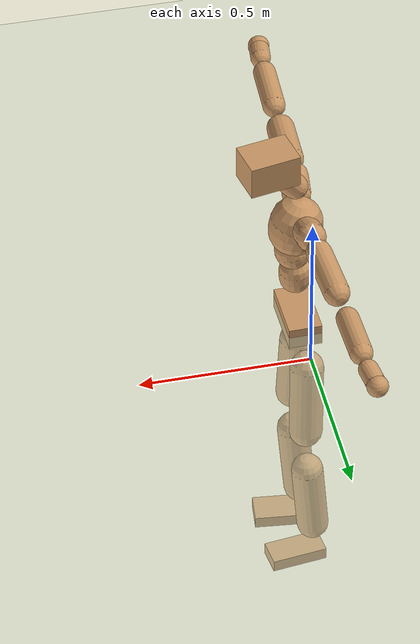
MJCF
<mujoco model="humanoid">
  <compiler coordinate="local" angle="radian"/>
  <default>
    <joint damping="0.0" armature="0.01" stiffness="0.0" limited="true"/>
    <geom conaffinity="1" condim="3" contype="7" margin="0.001" rgba="0.8 0.6 .4 1"/>
  </default>
  <asset>
    <texture type="skybox" builtin="gradient" rgb1=".4 .5 .6" rgb2="0 0 0" width="100" height="100"/>
    <texture builtin="flat" height="1278" mark="cross" markrgb="1 1 1" name="texgeom" random="0.01" rgb1="0.8 0.6 0.4" rgb2="0.8 0.6 0.4" type="cube" width="127"/>
    <texture builtin="checker" height="100" name="texplane" rgb1="0 0 0" rgb2="0.8 0.8 0.8" type="2d" width="100"/>
    <material name="MatPlane" reflectance="0.5" shininess="1" specular="1" texrepeat="60 60" texture="texplane"/>
    <material name="geom" texture="texgeom" texuniform="true"/>
  </asset>
  <worldbody>
    <light cutoff="100" diffuse="1 1 1" dir="-0 0 -1.3" directional="true" exponent="1" pos="0 0 1.3" specular=".1 .1 .1"/>
    <geom conaffinity="1" condim="3" name="floor" pos="0 0 0" rgba="0.8 0.9 0.8 1" size="100 100 .2" type="plane" material="MatPlane"/>
    <body name="Pelvis" pos="-0.0001 -0.1947 0.0031">
      <freejoint name="Pelvis"/>
      <geom type="box" contype="1" conaffinity="1" density="500" pos="-0.0074 -0.0001 -0.0113" size="0.0491 0.0921 0.0332" quat="1.0000 0.0000 0.0000 0.0088" name="Pelvis"/>
      <body name="L_Hip" pos="-0.0237 0.055 -0.0807">
        <joint name="L_Hip_x" type="hinge" pos="0 0 0" axis="1 0 0" stiffness="800" damping="80" armature="0.02" range="-180.0000 180.0000"/>
        <joint name="L_Hip_y" type="hinge" pos="0 0 0" axis="0 1 0" stiffness="800" damping="80" armature="0.02" range="-180.0000 180.0000"/>
        <joint name="L_Hip_z" type="hinge" pos="0 0 0" axis="0 0 1" stiffness="800" damping="80" armature="0.02" range="-180.0000 180.0000"/>
        <geom type="capsule" contype="1" conaffinity="1" density="500" fromto="0.0023 0.0083 -0.0766 0.0091 0.0332 -0.3066" size="0.0496" name="L_Hip"/>
        <body name="L_Knee" pos="0.0113 0.0415 -0.3832">
          <joint name="L_Knee_x" type="hinge" pos="0 0 0" axis="1 0 0" stiffness="800" damping="80" armature="0.02" range="-180.0000 180.0000"/>
          <joint name="L_Knee_y" type="hinge" pos="0 0 0" axis="0 1 0" stiffness="800" damping="80" armature="0.02" range="-180.0000 180.0000"/>
          <joint name="L_Knee_z" type="hinge" pos="0 0 0" axis="0 0 1" stiffness="800" damping="80" armature="0.02" range="-180.0000 180.0000"/>
          <geom type="capsule" contype="1" conaffinity="1" density="500" fromto="-0.0071 -0.0028 -0.0796 -0.0283 -0.0111 -0.3185" size="0.0475" name="L_Knee"/>
          <body name="L_Ankle" pos="-0.0353 -0.0139 -0.3982">
            <joint name="L_Ankle_x" type="hinge" pos="0 0 0" axis="1 0 0" stiffness="800" damping="80" armature="0.02" range="-180.0000 180.0000"/>
            <joint name="L_Ankle_y" type="hinge" pos="0 0 0" axis="0 1 0" stiffness="800" damping="80" armature="0.02" range="-180.0000 180.0000"/>
            <joint name="L_Ankle_z" type="hinge" pos="0 0 0" axis="0 0 1" stiffness="800" damping="80" armature="0.02" range="-180.0000 180.0000"/>
            <geom type="box" contype="1" conaffinity="1" density="500" pos="0.0598 0.0074 -0.0277" size="0.0843 0.0413 0.0195" quat="0.9981 0.0000 0.0000 0.0618" name="L_Ankle"/>
            <body name="L_Toe" pos="0.1196 0.0149 -0.0553">
              <joint name="L_Toe_x" type="hinge" pos="0 0 0" axis="1 0 0" stiffness="500" damping="50" armature="0.02" range="-180.0000 180.0000"/>
              <joint name="L_Toe_y" type="hinge" pos="0 0 0" axis="0 1 0" stiffness="500" damping="50" armature="0.02" range="-180.0000 180.0000"/>
              <joint name="L_Toe_z" type="hinge" pos="0 0 0" axis="0 0 1" stiffness="500" damping="50" armature="0.02" range="-180.0000 180.0000"/>
              <geom type="box" contype="1" conaffinity="1" density="500" pos="0.0000 0.0000 0.0293" size="0.0008 0.0021 0.0011" quat="0.9976 0.0000 0.0000 0.0689" name="L_Toe"/>
            </body>
          </body>
        </body>
      </body>
      <body name="R_Hip" pos="-0.0195 -0.0526 -0.0773">
        <joint name="R_Hip_x" type="hinge" pos="0 0 0" axis="1 0 0" stiffness="800" damping="80" armature="0.02" range="-180.0000 180.0000"/>
        <joint name="R_Hip_y" type="hinge" pos="0 0 0" axis="0 1 0" stiffness="800" damping="80" armature="0.02" range="-180.0000 180.0000"/>
        <joint name="R_Hip_z" type="hinge" pos="0 0 0" axis="0 0 1" stiffness="800" damping="80" armature="0.02" range="-180.0000 180.0000"/>
        <geom type="capsule" contype="1" conaffinity="1" density="500" fromto="0.0014 -0.0089 -0.0785 0.0056 -0.0356 -0.3138" size="0.049" name="R_Hip"/>
        <body name="R_Knee" pos="0.007 -0.0445 -0.3923">
          <joint name="R_Knee_x" type="hinge" pos="0 0 0" axis="1 0 0" stiffness="800" damping="80" armature="0.02" range="-180.0000 180.0000"/>
          <joint name="R_Knee_y" type="hinge" pos="0 0 0" axis="0 1 0" stiffness="800" damping="80" armature="0.02" range="-180.0000 180.0000"/>
          <joint name="R_Knee_z" type="hinge" pos="0 0 0" axis="0 0 1" stiffness="800" damping="80" armature="0.02" range="-180.0000 180.0000"/>
          <geom type="capsule" contype="1" conaffinity="1" density="500" fromto="-0.0066 0.0036 -0.0794 -0.0266 0.0145 -0.3175" size="0.0482" name="R_Knee"/>
          <body name="R_Ankle" pos="-0.0332 0.0181 -0.3969">
            <joint name="R_Ankle_x" type="hinge" pos="0 0 0" axis="1 0 0" stiffness="800" damping="80" armature="0.02" range="-180.0000 180.0000"/>
            <joint name="R_Ankle_y" type="hinge" pos="0 0 0" axis="0 1 0" stiffness="800" damping="80" armature="0.02" range="-180.0000 180.0000"/>
            <joint name="R_Ankle_z" type="hinge" pos="0 0 0" axis="0 0 1" stiffness="800" damping="80" armature="0.02" range="-180.0000 180.0000"/>
            <geom type="box" contype="1" conaffinity="1" density="500" pos="0.0612 -0.0068 -0.0223" size="0.0854 0.0456 0.0189" quat="0.9985 0.0000 0.0000 -0.0554" name="R_Ankle"/>
            <body name="R_Toe" pos="0.1223 -0.0136 -0.0447">
              <joint name="R_Toe_x" type="hinge" pos="0 0 0" axis="1 0 0" stiffness="500" damping="50" armature="0.02" range="-180.0000 180.0000"/>
              <joint name="R_Toe_y" type="hinge" pos="0 0 0" axis="0 1 0" stiffness="500" damping="50" armature="0.02" range="-180.0000 180.0000"/>
              <joint name="R_Toe_z" type="hinge" pos="0 0 0" axis="0 0 1" stiffness="500" damping="50" armature="0.02" range="-180.0000 180.0000"/>
              <geom type="box" contype="1" conaffinity="1" density="500" pos="0.0000 0.0000 0.0253" size="0.0008 0.0022 0.0011" quat="0.9989 0.0000 0.0000 -0.0465" name="R_Toe"/>
            </body>
          </body>
        </body>
      </body>
      <body name="Torso" pos="-0.0014 -0.0033 0.0905">
        <joint name="Torso_x" type="hinge" pos="0 0 0" axis="1 0 0" stiffness="1000" damping="100" armature="0.02" range="-180.0000 180.0000"/>
        <joint name="Torso_y" type="hinge" pos="0 0 0" axis="0 1 0" stiffness="1000" damping="100" armature="0.02" range="-180.0000 180.0000"/>
        <joint name="Torso_z" type="hinge" pos="0 0 0" axis="0 0 1" stiffness="1000" damping="100" armature="0.02" range="-180.0000 180.0000"/>
        <geom type="capsule" contype="1" conaffinity="1" density="500" fromto="0.0034 0.0024 0.0798 0.0023 0.0016 0.0532" size="0.0478" name="Torso"/>
        <body name="Spine" pos="0.0056 0.0041 0.1331">
          <joint name="Spine_x" type="hinge" pos="0 0 0" axis="1 0 0" stiffness="1000" damping="100" armature="0.02" range="-180.0000 180.0000"/>
          <joint name="Spine_y" type="hinge" pos="0 0 0" axis="0 1 0" stiffness="1000" damping="100" armature="0.02" range="-180.0000 180.0000"/>
          <joint name="Spine_z" type="hinge" pos="0 0 0" axis="0 0 1" stiffness="1000" damping="100" armature="0.02" range="-180.0000 180.0000"/>
          <geom type="capsule" contype="1" conaffinity="1" density="500" fromto="0.0086 0.0013 0.0290 0.0058 0.0009 0.0194" size="0.0515" name="Spine"/>
          <body name="Chest" pos="0.0144 0.0022 0.0484">
            <joint name="Chest_x" type="hinge" pos="0 0 0" axis="1 0 0" stiffness="1000" damping="100" armature="0.02" range="-180.0000 180.0000"/>
            <joint name="Chest_y" type="hinge" pos="0 0 0" axis="0 1 0" stiffness="1000" damping="100" armature="0.02" range="-180.0000 180.0000"/>
            <joint name="Chest_z" type="hinge" pos="0 0 0" axis="0 0 1" stiffness="1000" damping="100" armature="0.02" range="-180.0000 180.0000"/>
            <geom type="capsule" contype="1" conaffinity="1" density="500" fromto="-0.0184 -0.0011 0.0814 -0.0123 -0.0007 0.0543" size="0.0764" name="Chest"/>
            <body name="Neck" pos="-0.0257 -0.0024 0.1988">
              <joint name="Neck_x" type="hinge" pos="0 0 0" axis="1 0 0" stiffness="500" damping="50" armature="0.02" range="-180.0000 180.0000"/>
              <joint name="Neck_y" type="hinge" pos="0 0 0" axis="0 1 0" stiffness="500" damping="50" armature="0.02" range="-180.0000 180.0000"/>
              <joint name="Neck_z" type="hinge" pos="0 0 0" axis="0 0 1" stiffness="500" damping="50" armature="0.02" range="-180.0000 180.0000"/>
              <geom type="capsule" contype="1" conaffinity="1" density="500" fromto="0.0124 0.0021 0.0152 0.0495 0.0085 0.0608" size="0.0366" name="Neck"/>
              <body name="Head" pos="0.0619 0.0107 0.076">
                <joint name="Head_x" type="hinge" pos="0 0 0" axis="1 0 0" stiffness="500" damping="50" armature="0.02" range="-180.0000 180.0000"/>
                <joint name="Head_y" type="hinge" pos="0 0 0" axis="0 1 0" stiffness="500" damping="50" armature="0.02" range="-180.0000 180.0000"/>
                <joint name="Head_z" type="hinge" pos="0 0 0" axis="0 0 1" stiffness="500" damping="50" armature="0.02" range="-180.0000 180.0000"/>
                <geom type="box" contype="1" conaffinity="1" density="500" pos="0.0320 0.0063 0.0390" size="0.074 0.0548 0.0495" quat="0.9952 0.0000 0.0000 0.0977" name="Head"/>
              </body>
            </body>
            <body name="L_Thorax" pos="-0.0304 0.0659 0.1061">
              <joint name="L_Thorax_x" type="hinge" pos="0 0 0" axis="1 0 0" stiffness="500" damping="50" armature="0.02" range="-180.0000 180.0000"/>
              <joint name="L_Thorax_y" type="hinge" pos="0 0 0" axis="0 1 0" stiffness="500" damping="50" armature="0.02" range="-180.0000 180.0000"/>
              <joint name="L_Thorax_z" type="hinge" pos="0 0 0" axis="0 0 1" stiffness="500" damping="50" armature="0.02" range="-180.0000 180.0000"/>
              <geom type="capsule" contype="1" conaffinity="1" density="500" fromto="0.0001 0.0165 0.0068 0.0004 0.0659 0.0272" size="0.0424" name="L_Thorax"/>
              <body name="L_Shoulder" pos="0.0005 0.0823 0.034">
                <joint name="L_Shoulder_x" type="hinge" pos="0 0 0" axis="1 0 0" stiffness="500" damping="50" armature="0.02" range="-720.0000 720.0000"/>
                <joint name="L_Shoulder_y" type="hinge" pos="0 0 0" axis="0 1 0" stiffness="500" damping="50" armature="0.02" range="-720.0000 720.0000"/>
                <joint name="L_Shoulder_z" type="hinge" pos="0 0 0" axis="0 0 1" stiffness="500" damping="50" armature="0.02" range="-720.0000 720.0000"/>
                <geom type="capsule" contype="1" conaffinity="1" density="500" fromto="-0.0044 0.0535 -0.0042 -0.0177 0.2141 -0.0169" size="0.0374" name="L_Shoulder"/>
                <body name="L_Elbow" pos="-0.0221 0.2676 -0.0211">
                  <joint name="L_Elbow_x" type="hinge" pos="0 0 0" axis="1 0 0" stiffness="500" damping="50" armature="0.02" range="-720.0000 720.0000"/>
                  <joint name="L_Elbow_y" type="hinge" pos="0 0 0" axis="0 1 0" stiffness="500" damping="50" armature="0.02" range="-720.0000 720.0000"/>
                  <joint name="L_Elbow_z" type="hinge" pos="0 0 0" axis="0 0 1" stiffness="500" damping="50" armature="0.02" range="-720.0000 720.0000"/>
                  <geom type="capsule" contype="1" conaffinity="1" density="500" fromto="-0.0007 0.0500 0.0019 -0.0028 0.2001 0.0076" size="0.0326" name="L_Elbow"/>
                  <body name="L_Wrist" pos="-0.0036 0.2502 0.0095">
                    <joint name="L_Wrist_x" type="hinge" pos="0 0 0" axis="1 0 0" stiffness="300" damping="30" armature="0.02" range="-180.0000 180.0000"/>
                    <joint name="L_Wrist_y" type="hinge" pos="0 0 0" axis="0 1 0" stiffness="300" damping="30" armature="0.02" range="-180.0000 180.0000"/>
                    <joint name="L_Wrist_z" type="hinge" pos="0 0 0" axis="0 0 1" stiffness="300" damping="30" armature="0.02" range="-180.0000 180.0000"/>
                    <geom type="capsule" contype="1" conaffinity="1" density="500" fromto="-0.0026 0.0154 -0.0019 -0.0105 0.0615 -0.0077" size="0.0282" name="L_Wrist"/>
                    <body name="L_Hand" pos="-0.0131 0.0769 -0.0097">
                      <joint name="L_Hand_x" type="hinge" pos="0 0 0" axis="1 0 0" stiffness="300" damping="30" armature="0.02" range="-180.0000 180.0000"/>
                      <joint name="L_Hand_y" type="hinge" pos="0 0 0" axis="0 1 0" stiffness="300" damping="30" armature="0.02" range="-180.0000 180.0000"/>
                      <joint name="L_Hand_z" type="hinge" pos="0 0 0" axis="0 0 1" stiffness="300" damping="30" armature="0.02" range="-180.0000 180.0000"/>
                      <geom type="sphere" contype="1" conaffinity="1" density="500" size="0.0307" pos="0.0000 0.0000 0.0000" name="L_Hand"/>
                    </body>
                  </body>
                </body>
              </body>
            </body>
            <body name="R_Thorax" pos="-0.0361 -0.0689 0.1022">
              <joint name="R_Thorax_x" type="hinge" pos="0 0 0" axis="1 0 0" stiffness="500" damping="50" armature="0.02" range="-180.0000 180.0000"/>
              <joint name="R_Thorax_y" type="hinge" pos="0 0 0" axis="0 1 0" stiffness="500" damping="50" armature="0.02" range="-180.0000 180.0000"/>
              <joint name="R_Thorax_z" type="hinge" pos="0 0 0" axis="0 0 1" stiffness="500" damping="50" armature="0.02" range="-180.0000 180.0000"/>
              <geom type="capsule" contype="1" conaffinity="1" density="500" fromto="-0.0014 -0.0176 0.0073 -0.0058 -0.0705 0.0292" size="0.0419" name="R_Thorax"/>
              <body name="R_Shoulder" pos="-0.0072 -0.0882 0.0365">
                <joint name="R_Shoulder_x" type="hinge" pos="0 0 0" axis="1 0 0" stiffness="500" damping="50" armature="0.02" range="-720.0000 720.0000"/>
                <joint name="R_Shoulder_y" type="hinge" pos="0 0 0" axis="0 1 0" stiffness="500" damping="50" armature="0.02" range="-720.0000 720.0000"/>
                <joint name="R_Shoulder_z" type="hinge" pos="0 0 0" axis="0 0 1" stiffness="500" damping="50" armature="0.02" range="-720.0000 720.0000"/>
                <geom type="capsule" contype="1" conaffinity="1" density="500" fromto="-0.0030 -0.0529 -0.0041 -0.0118 -0.2115 -0.0165" size="0.0405" name="R_Shoulder"/>
                <body name="R_Elbow" pos="-0.0148 -0.2644 -0.0206">
                  <joint name="R_Elbow_x" type="hinge" pos="0 0 0" axis="1 0 0" stiffness="500" damping="50" armature="0.02" range="-720.0000 720.0000"/>
                  <joint name="R_Elbow_y" type="hinge" pos="0 0 0" axis="0 1 0" stiffness="500" damping="50" armature="0.02" range="-720.0000 720.0000"/>
                  <joint name="R_Elbow_z" type="hinge" pos="0 0 0" axis="0 0 1" stiffness="500" damping="50" armature="0.02" range="-720.0000 720.0000"/>
                  <geom type="capsule" contype="1" conaffinity="1" density="500" fromto="-0.0021 -0.0525 0.0006 -0.0085 -0.2102 0.0023" size="0.0334" name="R_Elbow"/>
                  <body name="R_Wrist" pos="-0.0106 -0.2627 0.0029">
                    <joint name="R_Wrist_x" type="hinge" pos="0 0 0" axis="1 0 0" stiffness="300" damping="30" armature="0.02" range="-180.0000 180.0000"/>
                    <joint name="R_Wrist_y" type="hinge" pos="0 0 0" axis="0 1 0" stiffness="300" damping="30" armature="0.02" range="-180.0000 180.0000"/>
                    <joint name="R_Wrist_z" type="hinge" pos="0 0 0" axis="0 0 1" stiffness="300" damping="30" armature="0.02" range="-180.0000 180.0000"/>
                    <geom type="capsule" contype="1" conaffinity="1" density="500" fromto="-0.0020 -0.0162 -0.0015 -0.0082 -0.0646 -0.0060" size="0.0299" name="R_Wrist"/>
                    <body name="R_Hand" pos="-0.0102 -0.0808 -0.0075">
                      <joint name="R_Hand_x" type="hinge" pos="0 0 0" axis="1 0 0" stiffness="300" damping="30" armature="0.02" range="-180.0000 180.0000"/>
                      <joint name="R_Hand_y" type="hinge" pos="0 0 0" axis="0 1 0" stiffness="300" damping="30" armature="0.02" range="-180.0000 180.0000"/>
                      <joint name="R_Hand_z" type="hinge" pos="0 0 0" axis="0 0 1" stiffness="300" damping="30" armature="0.02" range="-180.0000 180.0000"/>
                      <geom type="sphere" contype="1" conaffinity="1" density="500" size="0.0321" pos="0.0000 0.0000 0.0000" name="R_Hand"/>
                    </body>
                  </body>
                </body>
              </body>
            </body>
          </body>
        </body>
      </body>
    </body>
  </worldbody>
  <actuator>
    <motor name="L_Hip_x" joint="L_Hip_x" gear="500"/>
    <motor name="L_Hip_y" joint="L_Hip_y" gear="500"/>
    <motor name="L_Hip_z" joint="L_Hip_z" gear="500"/>
    <motor name="L_Knee_x" joint="L_Knee_x" gear="500"/>
    <motor name="L_Knee_y" joint="L_Knee_y" gear="500"/>
    <motor name="L_Knee_z" joint="L_Knee_z" gear="500"/>
    <motor name="L_Ankle_x" joint="L_Ankle_x" gear="500"/>
    <motor name="L_Ankle_y" joint="L_Ankle_y" gear="500"/>
    <motor name="L_Ankle_z" joint="L_Ankle_z" gear="500"/>
    <motor name="L_Toe_x" joint="L_Toe_x" gear="500"/>
    <motor name="L_Toe_y" joint="L_Toe_y" gear="500"/>
    <motor name="L_Toe_z" joint="L_Toe_z" gear="500"/>
    <motor name="R_Hip_x" joint="R_Hip_x" gear="500"/>
    <motor name="R_Hip_y" joint="R_Hip_y" gear="500"/>
    <motor name="R_Hip_z" joint="R_Hip_z" gear="500"/>
    <motor name="R_Knee_x" joint="R_Knee_x" gear="500"/>
    <motor name="R_Knee_y" joint="R_Knee_y" gear="500"/>
    <motor name="R_Knee_z" joint="R_Knee_z" gear="500"/>
    <motor name="R_Ankle_x" joint="R_Ankle_x" gear="500"/>
    <motor name="R_Ankle_y" joint="R_Ankle_y" gear="500"/>
    <motor name="R_Ankle_z" joint="R_Ankle_z" gear="500"/>
    <motor name="R_Toe_x" joint="R_Toe_x" gear="500"/>
    <motor name="R_Toe_y" joint="R_Toe_y" gear="500"/>
    <motor name="R_Toe_z" joint="R_Toe_z" gear="500"/>
    <motor name="Torso_x" joint="Torso_x" gear="500"/>
    <motor name="Torso_y" joint="Torso_y" gear="500"/>
    <motor name="Torso_z" joint="Torso_z" gear="500"/>
    <motor name="Spine_x" joint="Spine_x" gear="500"/>
    <motor name="Spine_y" joint="Spine_y" gear="500"/>
    <motor name="Spine_z" joint="Spine_z" gear="500"/>
    <motor name="Chest_x" joint="Chest_x" gear="500"/>
    <motor name="Chest_y" joint="Chest_y" gear="500"/>
    <motor name="Chest_z" joint="Chest_z" gear="500"/>
    <motor name="Neck_x" joint="Neck_x" gear="500"/>
    <motor name="Neck_y" joint="Neck_y" gear="500"/>
    <motor name="Neck_z" joint="Neck_z" gear="500"/>
    <motor name="Head_x" joint="Head_x" gear="500"/>
    <motor name="Head_y" joint="Head_y" gear="500"/>
    <motor name="Head_z" joint="Head_z" gear="500"/>
    <motor name="L_Thorax_x" joint="L_Thorax_x" gear="500"/>
    <motor name="L_Thorax_y" joint="L_Thorax_y" gear="500"/>
    <motor name="L_Thorax_z" joint="L_Thorax_z" gear="500"/>
    <motor name="L_Shoulder_x" joint="L_Shoulder_x" gear="500"/>
    <motor name="L_Shoulder_y" joint="L_Shoulder_y" gear="500"/>
    <motor name="L_Shoulder_z" joint="L_Shoulder_z" gear="500"/>
    <motor name="L_Elbow_x" joint="L_Elbow_x" gear="500"/>
    <motor name="L_Elbow_y" joint="L_Elbow_y" gear="500"/>
    <motor name="L_Elbow_z" joint="L_Elbow_z" gear="500"/>
    <motor name="L_Wrist_x" joint="L_Wrist_x" gear="500"/>
    <motor name="L_Wrist_y" joint="L_Wrist_y" gear="500"/>
    <motor name="L_Wrist_z" joint="L_Wrist_z" gear="500"/>
    <motor name="L_Hand_x" joint="L_Hand_x" gear="500"/>
    <motor name="L_Hand_y" joint="L_Hand_y" gear="500"/>
    <motor name="L_Hand_z" joint="L_Hand_z" gear="500"/>
    <motor name="R_Thorax_x" joint="R_Thorax_x" gear="500"/>
    <motor name="R_Thorax_y" joint="R_Thorax_y" gear="500"/>
    <motor name="R_Thorax_z" joint="R_Thorax_z" gear="500"/>
    <motor name="R_Shoulder_x" joint="R_Shoulder_x" gear="500"/>
    <motor name="R_Shoulder_y" joint="R_Shoulder_y" gear="500"/>
    <motor name="R_Shoulder_z" joint="R_Shoulder_z" gear="500"/>
    <motor name="R_Elbow_x" joint="R_Elbow_x" gear="500"/>
    <motor name="R_Elbow_y" joint="R_Elbow_y" gear="500"/>
    <motor name="R_Elbow_z" joint="R_Elbow_z" gear="500"/>
    <motor name="R_Wrist_x" joint="R_Wrist_x" gear="500"/>
    <motor name="R_Wrist_y" joint="R_Wrist_y" gear="500"/>
    <motor name="R_Wrist_z" joint="R_Wrist_z" gear="500"/>
    <motor name="R_Hand_x" joint="R_Hand_x" gear="500"/>
    <motor name="R_Hand_y" joint="R_Hand_y" gear="500"/>
    <motor name="R_Hand_z" joint="R_Hand_z" gear="500"/>
  </actuator>
  <contact>
    <exclude body1="Torso" body2="Chest"/>
    <exclude body1="Head" body2="Chest"/>
    <exclude body1="R_Knee" body2="R_Toe"/>
    <exclude body1="R_Knee" body2="L_Ankle"/>
    <exclude body1="R_Knee" body2="L_Toe"/>
    <exclude body1="L_Knee" body2="L_Toe"/>
    <exclude body1="L_Knee" body2="R_Ankle"/>
    <exclude body1="L_Knee" body2="R_Toe"/>
    <exclude body1="L_Shoulder" body2="Chest"/>
    <exclude body1="R_Shoulder" body2="Chest"/>
  </contact>
  <sensor/>
  <size njmax="700" nconmax="700"/>
</mujoco>
